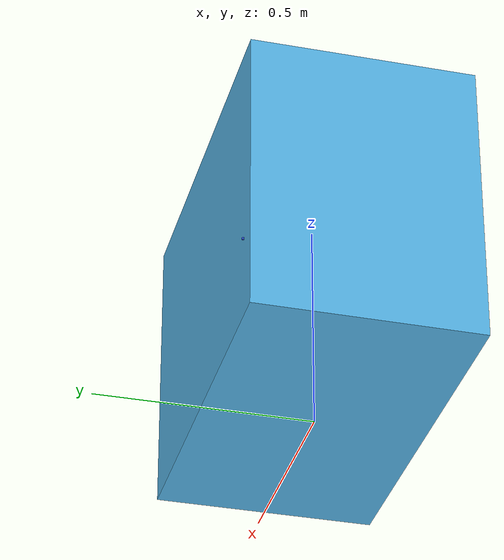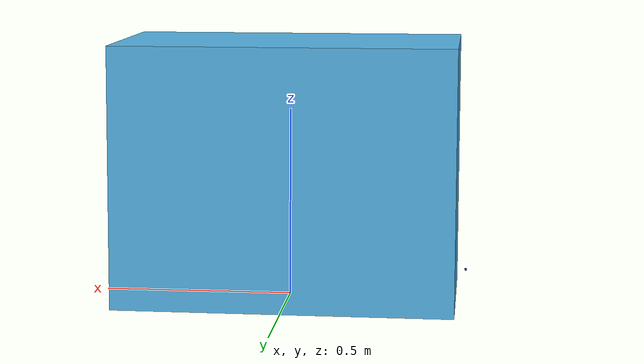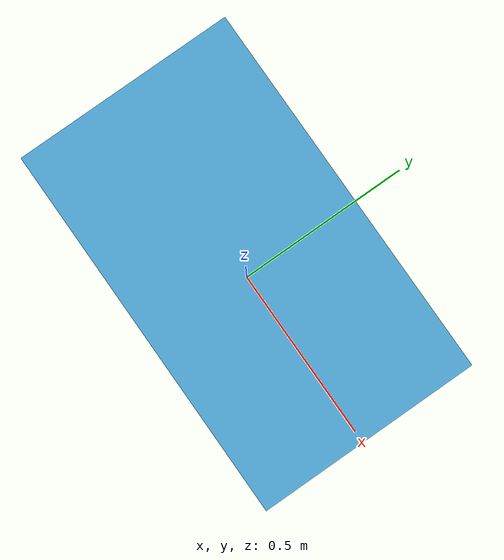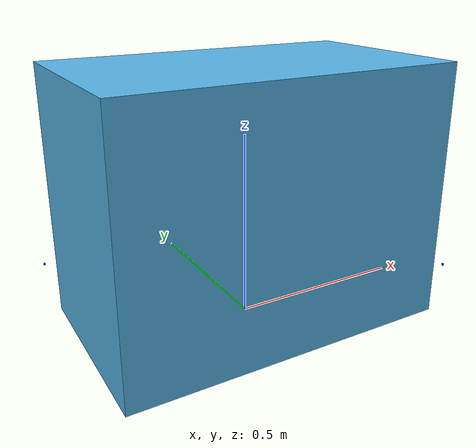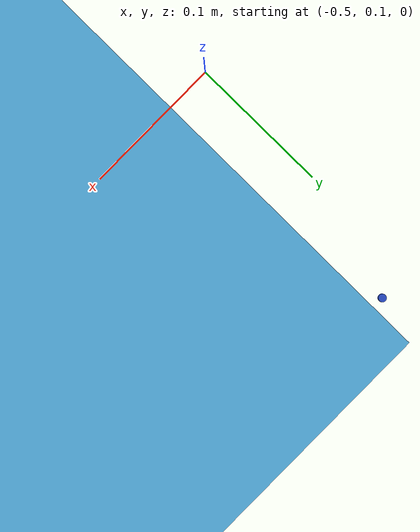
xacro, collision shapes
<?xml version="1.0"?>

<robot name="kuka_kmr" xmlns:xacro="http://www.ros.org/wiki/xacro">

    <xacro:include filename="$(find kuka_kmr_description)/urdf/wheels/omni_wheel.urdf.xacro" />
	<xacro:include filename="$(find kuka_kmr_description)/urdf/base/kmr_base.urdf.xacro" />

	<xacro:macro name="kuka_kmr" params="front_laser:=true rear_laser:=true">

		<xacro:kmr_base/>
		<xacro:omni_steering/>
		<xacro:laser_scans laser_front_on="${front_laser}" laser_rear_on="${rear_laser}"/>

   </xacro:macro>

   <xacro:kuka_kmr/>

</robot>

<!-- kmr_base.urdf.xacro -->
<robot name="kmr_base" xmlns:xacro="http://www.ros.org/wiki/xacro">

  <xacro:macro name="kmr_base" params="base_mass:=50">

    <xacro:include filename="$(find kuka_kmr_description)/urdf/base/kmr_base.gazebo.xacro" />

    <xacro:property name="l_pre" value="0.63" />
    <xacro:property name="w_pre" value="1.08" />
    <xacro:property name="h_pre" value="0.7" />

    <xacro:property name="l" value="${l_pre*0.82}" />
    <xacro:property name="w" value="${w_pre*0.82}" />
    <xacro:property name="h" value="${h_pre*0.975}" />

    <xacro:property name="mass" value="${base_mass}"/>
    <xacro:property name="scale" value="1" />
    <!-- Sensor Properties -->
    <xacro:property name = "l_mass" value="0.01"/>
    <xacro:property name = "s_r" value="0.0025"/>
    <xacro:property name = "s_l" value="0.005"/>

    <xacro:property name = "base_name" value="base_link"/>
    <xacro:property name="PI" value="3.1415926535897931" />

    <!-- BASE FOOTPRINT -->
    <link name="base_footprint">
    </link>

    <joint name="${base_name}_footprint_joint" type="fixed">
      <origin xyz="0 0 0" rpy="0 0 0" />
      <parent link="base_footprint"/>
      <child link="${base_name}" />
    </joint>

    <!-- KMR BASE_LINK -->

    <link name="${base_name}">
      <inertial>
        <mass value="${scale*mass}" />
        <origin xyz="0 0 ${(h/2)}" rppy="0 0 0 " />   <!--Add x= -0.5-->
        <inertia  ixx="${scale*mass*(h*h+l*l)/12}" ixy="0.0"  ixz="0.0"  iyy="${scale*mass*(w*w+h*h)/12}"  iyz="0.0"  izz="${scale*mass*(l*l+w*w)/12}" />
      </inertial>

      <visual>
        <origin xyz="-0.5 0 0" rpy="0 0 0" />
        <geometry>
            <mesh filename="package://kuka_kmr_description/meshes/base/kmr_iiwa_mobile_base.dae"/>
        </geometry>
      </visual>

      <collision>
        <origin xyz="0 0 ${(h/2)}" rppy="0 0 0 " />   <!--Add x= -0.5-->
        <geometry>
          <box size="${w*scale} ${l*scale} ${h}" />
        </geometry>
      </collision>
    </link>

    <gazebo reference="${base_name}">
      <mu1>0.3</mu1>
      <mu2>0.3</mu2>
    </gazebo>

    <!-- LASER SCAN LINK FRONT -->
    <link name="base_laser_front">
      <inertial>
        <origin xyz="0 0 0" rpy="0 0 0" />
        <mass value="${l_mass}" />
        <inertia  ixx="${l_mass*(3*s_r*s_r + s_l*s_l)/12}" ixy = "0" ixz = "0"
        iyy="${l_mass*(3*s_r*s_r + s_l*s_l)/12}" iyz = "0"
        izz="${l_mass*(s_r*s_r)/2}" />
        </inertial>

      <visual>
        <origin xyz="0 0 0" rpy="0 0 0" />
        <geometry>
          <cylinder radius="${s_r}" length="${s_l}"/>
        </geometry>
        <material name="blue" />
      </visual>

      <collision>
        <origin xyz="0 0 0" rpy="0 0 0"/>
        <geometry>
          <cylinder radius="${s_r}" length="${s_l}"/>
        </geometry>
      </collision>
    </link>
    <!-- JOINT FRONT_LASER_BASE and BASE LINK -->
    <joint name="joint_sensor_laser_front" type="fixed">
      <origin xyz="0.47 -0.265 0.135" rpy="0 0 ${-PI/4}"/>
      <parent link="${base_name}"/>
      <child link="base_laser_front"/>
    </joint>

    <!-- LASER SCAN LINK REAR -->
    <link name="base_laser_rear">
      <inertial>
        <origin xyz="0 0 0" rpy="0 0 0" />
        <mass value="${l_mass}" />
        <inertia  ixx="${l_mass*(3*s_r*s_r + s_l*s_l)/12}" ixy = "0" ixz = "0"
        iyy="${l_mass*(3*s_r*s_r + s_l*s_l)/12}" iyz = "0"
        izz="${l_mass*(s_r*s_r)/2}" />
      </inertial>

      <visual>
        <origin xyz="0 0 0" rpy="0 0 0" />
        <geometry>
          <cylinder radius="${s_r}" length="${s_l}"/>
        </geometry>
        <material name="blue" />
      </visual>

      <collision>
        <origin xyz="0 0 0" rpy="0 0 0"/>
        <geometry>
          <cylinder radius="${s_r}" length="${s_l}"/>
        </geometry>
      </collision>
    </link>
    <!-- JOINT REAR_LASER_BASE and BASE LINK -->
    <joint name="joint_sensor_laser_rear" type="fixed">
      <origin xyz="-0.47 0.28 0.135" rpy="0 0 ${3*PI/4}"/>
      <parent link="${base_name}"/>
      <child link="base_laser_rear"/>
    </joint>

  </xacro:macro>

</robot>
